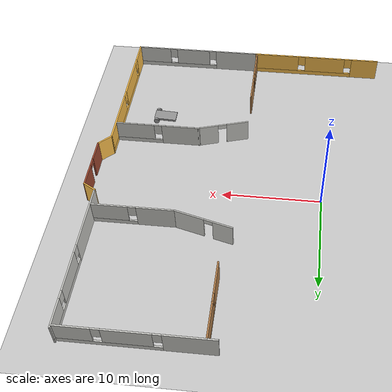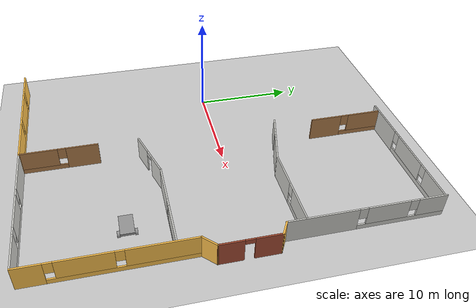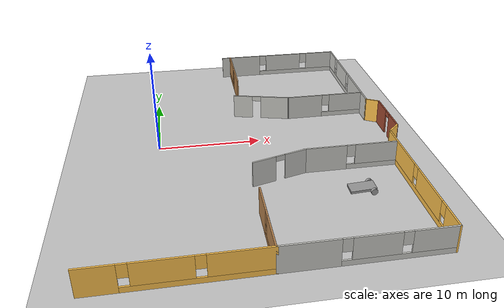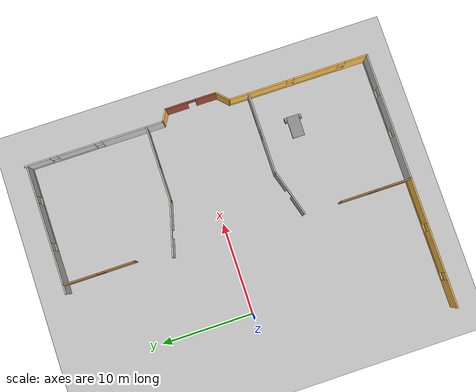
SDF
<sdf version="1.6">
 <world name="default">
  <model name="ground_plane">
   <static>1</static>
   <link name="link">
    <collision name="collision">
     <geometry><plane><normal>0 0 1</normal><size>100 100</size></plane></geometry>
     <surface><friction><ode><mu>100</mu><mu2>50</mu2></ode></friction></surface>
    </collision>
    <visual name="visual">
     <cast_shadows>0</cast_shadows>
     <geometry><plane><normal>0 0 1</normal><size>100 100</size></plane></geometry>
     <material>
      <script><uri>file://media/materials/scripts/gazebo.material</uri><name>Gazebo/Grey</name></script>
     </material>
    </visual>
   </link>
  </model>
  <model name="model">
   <pose>1.3797 -1.1711 0 0 -0 0</pose>
   <link name="Wall_24">
    <pose>-0.167493 -18.9183 0 0 -0 0</pose>
    <visual name="Wall_24_Visual_0">
     <pose>-5.61853 0 1.25 0 -0 0</pose>
     <geometry><box><size>3.01295 0.15 2.5</size></box></geometry>
     <material>
      <script><uri>file://media/materials/scripts/gazebo.material</uri><name>Gazebo/Grey</name></script>
      <ambient>1 0.764706 0.305882 1</ambient>
     </material>
     <meta><layer>0</layer></meta>
    </visual>
    <collision name="Wall_24_Collision_0">
     <geometry><box><size>3.01295 0.15 2.5</size></box></geometry>
     <pose>-5.61853 0 1.25 0 -0 0</pose>
    </collision>
    <visual name="Wall_24_Visual_1">
     <pose>1.50647 0 0.25 0 -0 0</pose>
     <geometry><box><size>11.2371 0.15 0.5</size></box></geometry>
     <material>
      <script><uri>file://media/materials/scripts/gazebo.material</uri><name>Gazebo/Grey</name></script>
      <ambient>1 0.764706 0.305882 1</ambient>
     </material>
     <meta><layer>0</layer></meta>
    </visual>
    <collision name="Wall_24_Collision_1">
     <geometry><box><size>11.2371 0.15 0.5</size></box></geometry>
     <pose>1.50647 0 0.25 0 -0 0</pose>
    </collision>
    <visual name="Wall_24_Visual_2">
     <pose>-1.02682 0 1.5 0 -0 0</pose>
     <geometry><box><size>4.57046 0.15 2</size></box></geometry>
     <material>
      <script><uri>file://media/materials/scripts/gazebo.material</uri><name>Gazebo/Grey</name></script>
      <ambient>1 0.764706 0.305882 1</ambient>
     </material>
     <meta><layer>0</layer></meta>
    </visual>
    <collision name="Wall_24_Collision_2">
     <geometry><box><size>4.57046 0.15 2</size></box></geometry>
     <pose>-1.02682 0 1.5 0 -0 0</pose>
    </collision>
    <visual name="Wall_24_Visual_3">
     <pose>4.5917 0 1.5 0 -0 0</pose>
     <geometry><box><size>5.06659 0.15 2</size></box></geometry>
     <material>
      <script><uri>file://media/materials/scripts/gazebo.material</uri><name>Gazebo/Grey</name></script>
      <ambient>1 0.764706 0.305882 1</ambient>
     </material>
     <meta><layer>0</layer></meta>
    </visual>
    <collision name="Wall_24_Collision_3">
     <geometry><box><size>5.06659 0.15 2</size></box></geometry>
     <pose>4.5917 0 1.5 0 -0 0</pose>
    </collision>
    <visual name="Wall_24_Visual_4">
     <pose>-3.71205 0 1.9 0 -0 0</pose>
     <geometry><box><size>0.8 0.15 1.2</size></box></geometry>
     <material>
      <script><uri>file://media/materials/scripts/gazebo.material</uri><name>Gazebo/Grey</name></script>
      <ambient>1 0.764706 0.305882 1</ambient>
     </material>
     <meta><layer>0</layer></meta>
    </visual>
    <collision name="Wall_24_Collision_4">
     <geometry><box><size>0.8 0.15 1.2</size></box></geometry>
     <pose>-3.71205 0 1.9 0 -0 0</pose>
    </collision>
    <visual name="Wall_24_Visual_5">
     <pose>1.65841 0 1.9 0 -0 0</pose>
     <geometry><box><size>0.8 0.15 1.2</size></box></geometry>
     <material>
      <script><uri>file://media/materials/scripts/gazebo.material</uri><name>Gazebo/Grey</name></script>
      <ambient>1 0.764706 0.305882 1</ambient>
     </material>
     <meta><layer>0</layer></meta>
    </visual>
    <collision name="Wall_24_Collision_5">
     <geometry><box><size>0.8 0.15 1.2</size></box></geometry>
     <pose>1.65841 0 1.9 0 -0 0</pose>
    </collision>
   </link>
   <link name="Wall_25">
    <pose>13.8075 -18.9183 0 0 -0 0</pose>
    <visual name="Wall_25_Visual_0">
     <pose>-4.56921 0 1.25 0 -0 0</pose>
     <geometry><box><size>4.86159 0.15 2.5</size></box></geometry>
     <material>
      <script><uri>file://media/materials/scripts/gazebo.material</uri><name>Gazebo/CeilingTiled</name></script>
      <ambient>1 0.764706 0.305882 1</ambient>
     </material>
     <meta><layer>0</layer></meta>
    </visual>
    <collision name="Wall_25_Collision_0">
     <geometry><box><size>4.86159 0.15 2.5</size></box></geometry>
     <pose>-4.56921 0 1.25 0 -0 0</pose>
    </collision>
    <visual name="Wall_25_Visual_1">
     <pose>2.43079 0 0.25 0 -0 0</pose>
     <geometry><box><size>9.13841 0.15 0.5</size></box></geometry>
     <material>
      <script><uri>file://media/materials/scripts/gazebo.material</uri><name>Gazebo/CeilingTiled</name></script>
      <ambient>1 0.764706 0.305882 1</ambient>
     </material>
     <meta><layer>0</layer></meta>
    </visual>
    <collision name="Wall_25_Collision_1">
     <geometry><box><size>9.13841 0.15 0.5</size></box></geometry>
     <pose>2.43079 0 0.25 0 -0 0</pose>
    </collision>
    <visual name="Wall_25_Visual_2">
     <pose>0.58065 0 1.5 0 -0 0</pose>
     <geometry><box><size>3.83812 0.15 2</size></box></geometry>
     <material>
      <script><uri>file://media/materials/scripts/gazebo.material</uri><name>Gazebo/CeilingTiled</name></script>
      <ambient>1 0.764706 0.305882 1</ambient>
     </material>
     <meta><layer>0</layer></meta>
    </visual>
    <collision name="Wall_25_Collision_2">
     <geometry><box><size>3.83812 0.15 2</size></box></geometry>
     <pose>0.58065 0 1.5 0 -0 0</pose>
    </collision>
    <visual name="Wall_25_Visual_3">
     <pose>5.14986 0 1.5 0 -0 0</pose>
     <geometry><box><size>3.70029 0.15 2</size></box></geometry>
     <material>
      <script><uri>file://media/materials/scripts/gazebo.material</uri><name>Gazebo/CeilingTiled</name></script>
      <ambient>1 0.764706 0.305882 1</ambient>
     </material>
     <meta><layer>0</layer></meta>
    </visual>
    <collision name="Wall_25_Collision_3">
     <geometry><box><size>3.70029 0.15 2</size></box></geometry>
     <pose>5.14986 0 1.5 0 -0 0</pose>
    </collision>
    <visual name="Wall_25_Visual_4">
     <pose>-1.73841 0 1.9 0 -0 0</pose>
     <geometry><box><size>0.8 0.15 1.2</size></box></geometry>
     <material>
      <script><uri>file://media/materials/scripts/gazebo.material</uri><name>Gazebo/CeilingTiled</name></script>
      <ambient>1 0.764706 0.305882 1</ambient>
     </material>
     <meta><layer>0</layer></meta>
    </visual>
    <collision name="Wall_25_Collision_4">
     <geometry><box><size>0.8 0.15 1.2</size></box></geometry>
     <pose>-1.73841 0 1.9 0 -0 0</pose>
    </collision>
    <visual name="Wall_25_Visual_5">
     <pose>2.89971 0 1.9 0 -0 0</pose>
     <geometry><box><size>0.8 0.15 1.2</size></box></geometry>
     <material>
      <script><uri>file://media/materials/scripts/gazebo.material</uri><name>Gazebo/CeilingTiled</name></script>
      <ambient>1 0.764706 0.305882 1</ambient>
     </material>
     <meta><layer>0</layer></meta>
    </visual>
    <collision name="Wall_25_Collision_5">
     <geometry><box><size>0.8 0.15 1.2</size></box></geometry>
     <pose>2.89971 0 1.9 0 -0 0</pose>
    </collision>
   </link>
   <link name="Wall_26">
    <pose>20.7325 -11.2433 0 0 -0 1.5708</pose>
    <visual name="Wall_26_Visual_0">
     <pose>-6.48124 0 1.25 0 -0 0</pose>
     <geometry><box><size>2.53753 0.15 2.5</size></box></geometry>
     <material>
      <script><uri>file://media/materials/scripts/gazebo.material</uri><name>Gazebo/Grey</name></script>
      <ambient>1 0.764706 0.305882 1</ambient>
     </material>
     <meta><layer>0</layer></meta>
    </visual>
    <collision name="Wall_26_Collision_0">
     <geometry><box><size>2.53753 0.15 2.5</size></box></geometry>
     <pose>-6.48124 0 1.25 0 -0 0</pose>
    </collision>
    <visual name="Wall_26_Visual_1">
     <pose>1.26876 0 0.25 0 -0 0</pose>
     <geometry><box><size>12.9625 0.15 0.5</size></box></geometry>
     <material>
      <script><uri>file://media/materials/scripts/gazebo.material</uri><name>Gazebo/Grey</name></script>
      <ambient>1 0.764706 0.305882 1</ambient>
     </material>
     <meta><layer>0</layer></meta>
    </visual>
    <collision name="Wall_26_Collision_1">
     <geometry><box><size>12.9625 0.15 0.5</size></box></geometry>
     <pose>1.26876 0 0.25 0 -0 0</pose>
    </collision>
    <visual name="Wall_26_Visual_2">
     <pose>-1.95201 0 1.5 0 -0 0</pose>
     <geometry><box><size>4.92092 0.15 2</size></box></geometry>
     <material>
      <script><uri>file://media/materials/scripts/gazebo.material</uri><name>Gazebo/Grey</name></script>
      <ambient>1 0.764706 0.305882 1</ambient>
     </material>
     <meta><layer>0</layer></meta>
    </visual>
    <collision name="Wall_26_Collision_2">
     <geometry><box><size>4.92092 0.15 2</size></box></geometry>
     <pose>-1.95201 0 1.5 0 -0 0</pose>
    </collision>
    <visual name="Wall_26_Visual_3">
     <pose>4.52922 0 1.5 0 -0 0</pose>
     <geometry><box><size>6.44155 0.15 2</size></box></geometry>
     <material>
      <script><uri>file://media/materials/scripts/gazebo.material</uri><name>Gazebo/Grey</name></script>
      <ambient>1 0.764706 0.305882 1</ambient>
     </material>
     <meta><layer>0</layer></meta>
    </visual>
    <collision name="Wall_26_Collision_3">
     <geometry><box><size>6.44155 0.15 2</size></box></geometry>
     <pose>4.52922 0 1.5 0 -0 0</pose>
    </collision>
    <visual name="Wall_26_Visual_4">
     <pose>-4.81247 0 1.9 0 -0 0</pose>
     <geometry><box><size>0.8 0.15 1.2</size></box></geometry>
     <material>
      <script><uri>file://media/materials/scripts/gazebo.material</uri><name>Gazebo/Grey</name></script>
      <ambient>1 0.764706 0.305882 1</ambient>
     </material>
     <meta><layer>0</layer></meta>
    </visual>
    <collision name="Wall_26_Collision_4">
     <geometry><box><size>0.8 0.15 1.2</size></box></geometry>
     <pose>-4.81247 0 1.9 0 -0 0</pose>
    </collision>
    <visual name="Wall_26_Visual_5">
     <pose>0.908446 0 1.9 0 -0 0</pose>
     <geometry><box><size>0.8 0.15 1.2</size></box></geometry>
     <material>
      <script><uri>file://media/materials/scripts/gazebo.material</uri><name>Gazebo/Grey</name></script>
      <ambient>1 0.764706 0.305882 1</ambient>
     </material>
     <meta><layer>0</layer></meta>
    </visual>
    <collision name="Wall_26_Collision_5">
     <geometry><box><size>0.8 0.15 1.2</size></box></geometry>
     <pose>0.908446 0 1.9 0 -0 0</pose>
    </collision>
   </link>
   <link name="Wall_27">
    <collision name="Wall_27_Collision">
     <geometry><box><size>1.75 0.15 2.5</size></box></geometry>
     <pose>0 0 1.25 0 -0 0</pose>
    </collision>
    <visual name="Wall_27_Visual">
     <pose>0 0 1.25 0 -0 0</pose>
     <geometry><box><size>1.75 0.15 2.5</size></box></geometry>
     <material>
      <script><uri>file://media/materials/scripts/gazebo.material</uri><name>Gazebo/Grey</name></script>
      <ambient>1 0.764706 0.305882 1</ambient>
     </material>
     <meta><layer>0</layer></meta>
    </visual>
    <pose>21.2982 -3.00259 0 0 -0 0.785398</pose>
   </link>
   <link name="Wall_28">
    <pose>21.8639 0.363092 0 0 -0 1.5708</pose>
    <visual name="Wall_28_Visual_0">
     <pose>-1.69424 0 1.25 0 -0 0</pose>
     <geometry><box><size>2.36151 0.15 2.5</size></box></geometry>
     <material>
      <script><uri>file://media/materials/scripts/gazebo.material</uri><name>Gazebo/Bricks</name></script>
      <ambient>1 1 1 1</ambient>
     </material>
     <meta><layer>0</layer></meta>
    </visual>
    <collision name="Wall_28_Collision_0">
     <geometry><box><size>2.36151 0.15 2.5</size></box></geometry>
     <pose>-1.69424 0 1.25 0 -0 0</pose>
    </collision>
    <visual name="Wall_28_Visual_1">
     <pose>1.63076 0 1.25 0 -0 0</pose>
     <geometry><box><size>2.48849 0.15 2.5</size></box></geometry>
     <material>
      <script><uri>file://media/materials/scripts/gazebo.material</uri><name>Gazebo/Bricks</name></script>
      <ambient>1 1 1 1</ambient>
     </material>
     <meta><layer>0</layer></meta>
    </visual>
    <collision name="Wall_28_Collision_1">
     <geometry><box><size>2.48849 0.15 2.5</size></box></geometry>
     <pose>1.63076 0 1.25 0 -0 0</pose>
    </collision>
    <visual name="Wall_28_Visual_2">
     <pose>-0.063486 0 2.25 0 -0 0</pose>
     <geometry><box><size>0.9 0.15 0.5</size></box></geometry>
     <material>
      <script><uri>file://media/materials/scripts/gazebo.material</uri><name>Gazebo/Bricks</name></script>
      <ambient>1 1 1 1</ambient>
     </material>
     <meta><layer>0</layer></meta>
    </visual>
    <collision name="Wall_28_Collision_2">
     <geometry><box><size>0.9 0.15 0.5</size></box></geometry>
     <pose>-0.063486 0 2.25 0 -0 0</pose>
    </collision>
   </link>
   <link name="Wall_29">
    <collision name="Wall_29_Collision">
     <geometry><box><size>1.5 0.15 2.5</size></box></geometry>
     <pose>0 0 1.25 0 -0 0</pose>
    </collision>
    <visual name="Wall_29_Visual">
     <pose>0 0 1.25 0 -0 0</pose>
     <geometry><box><size>1.5 0.15 2.5</size></box></geometry>
     <material>
      <script><uri>file://media/materials/scripts/gazebo.material</uri><name>Gazebo/Grey</name></script>
      <ambient>1 0.764706 0.305882 1</ambient>
     </material>
     <meta><layer>0</layer></meta>
    </visual>
    <pose>21.2793 3.50059 0 0 -0 2.61799</pose>
   </link>
   <link name="Wall_42">
    <pose>20.6947 11.3881 0 0 -0 1.5708</pose>
    <visual name="Wall_42_Visual_0">
     <pose>-4.22815 0 1.25 0 -0 0</pose>
     <geometry><box><size>6.7937 0.15 2.5</size></box></geometry>
     <material>
      <script><uri>file://media/materials/scripts/gazebo.material</uri><name>Gazebo/CeilingTiled</name></script>
      <ambient>1 0.764706 0.305882 1</ambient>
     </material>
     <meta><layer>0</layer></meta>
    </visual>
    <collision name="Wall_42_Collision_0">
     <geometry><box><size>6.7937 0.15 2.5</size></box></geometry>
     <pose>-4.22815 0 1.25 0 -0 0</pose>
    </collision>
    <visual name="Wall_42_Visual_1">
     <pose>3.39685 0 0.25 0 -0 0</pose>
     <geometry><box><size>8.4563 0.15 0.5</size></box></geometry>
     <material>
      <script><uri>file://media/materials/scripts/gazebo.material</uri><name>Gazebo/CeilingTiled</name></script>
      <ambient>1 0.764706 0.305882 1</ambient>
     </material>
     <meta><layer>0</layer></meta>
    </visual>
    <collision name="Wall_42_Collision_1">
     <geometry><box><size>8.4563 0.15 0.5</size></box></geometry>
     <pose>3.39685 0 0.25 0 -0 0</pose>
    </collision>
    <visual name="Wall_42_Visual_2">
     <pose>2.00082 0 1.5 0 -0 0</pose>
     <geometry><box><size>4.06425 0.15 2</size></box></geometry>
     <material>
      <script><uri>file://media/materials/scripts/gazebo.material</uri><name>Gazebo/CeilingTiled</name></script>
      <ambient>1 0.764706 0.305882 1</ambient>
     </material>
     <meta><layer>0</layer></meta>
    </visual>
    <collision name="Wall_42_Collision_2">
     <geometry><box><size>4.06425 0.15 2</size></box></geometry>
     <pose>2.00082 0 1.5 0 -0 0</pose>
    </collision>
    <visual name="Wall_42_Visual_3">
     <pose>6.22897 0 1.5 0 -0 0</pose>
     <geometry><box><size>2.79205 0.15 2</size></box></geometry>
     <material>
      <script><uri>file://media/materials/scripts/gazebo.material</uri><name>Gazebo/CeilingTiled</name></script>
      <ambient>1 0.764706 0.305882 1</ambient>
     </material>
     <meta><layer>0</layer></meta>
    </visual>
    <collision name="Wall_42_Collision_3">
     <geometry><box><size>2.79205 0.15 2</size></box></geometry>
     <pose>6.22897 0 1.5 0 -0 0</pose>
    </collision>
    <visual name="Wall_42_Visual_4">
     <pose>-0.431303 0 1.9 0 -0 0</pose>
     <geometry><box><size>0.8 0.15 1.2</size></box></geometry>
     <material>
      <script><uri>file://media/materials/scripts/gazebo.material</uri><name>Gazebo/CeilingTiled</name></script>
      <ambient>1 0.764706 0.305882 1</ambient>
     </material>
     <meta><layer>0</layer></meta>
    </visual>
    <collision name="Wall_42_Collision_4">
     <geometry><box><size>0.8 0.15 1.2</size></box></geometry>
     <pose>-0.431303 0 1.9 0 -0 0</pose>
    </collision>
    <visual name="Wall_42_Visual_5">
     <pose>4.43295 0 1.9 0 -0 0</pose>
     <geometry><box><size>0.8 0.15 1.2</size></box></geometry>
     <material>
      <script><uri>file://media/materials/scripts/gazebo.material</uri><name>Gazebo/CeilingTiled</name></script>
      <ambient>1 0.764706 0.305882 1</ambient>
     </material>
     <meta><layer>0</layer></meta>
    </visual>
    <collision name="Wall_42_Collision_5">
     <geometry><box><size>0.8 0.15 1.2</size></box></geometry>
     <pose>4.43295 0 1.9 0 -0 0</pose>
    </collision>
   </link>
   <link name="Wall_53">
    <pose>13.6825 18.7535 0 0 -0 0</pose>
    <visual name="Wall_53_Visual_0">
     <pose>-4.64128 0 1.25 0 -0 0</pose>
     <geometry><box><size>4.71744 0.15 2.5</size></box></geometry>
     <material>
      <script><uri>file://media/materials/scripts/gazebo.material</uri><name>Gazebo/CeilingTiled</name></script>
      <ambient>1 0.764706 0.305882 1</ambient>
     </material>
     <meta><layer>0</layer></meta>
    </visual>
    <collision name="Wall_53_Collision_0">
     <geometry><box><size>4.71744 0.15 2.5</size></box></geometry>
     <pose>-4.64128 0 1.25 0 -0 0</pose>
    </collision>
    <visual name="Wall_53_Visual_1">
     <pose>2.35872 0 0.25 0 -0 0</pose>
     <geometry><box><size>9.28256 0.15 0.5</size></box></geometry>
     <material>
      <script><uri>file://media/materials/scripts/gazebo.material</uri><name>Gazebo/CeilingTiled</name></script>
      <ambient>1 0.764706 0.305882 1</ambient>
     </material>
     <meta><layer>0</layer></meta>
    </visual>
    <collision name="Wall_53_Collision_1">
     <geometry><box><size>9.28256 0.15 0.5</size></box></geometry>
     <pose>2.35872 0 0.25 0 -0 0</pose>
    </collision>
    <visual name="Wall_53_Visual_2">
     <pose>0.700074 0 1.5 0 -0 0</pose>
     <geometry><box><size>4.36526 0.15 2</size></box></geometry>
     <material>
      <script><uri>file://media/materials/scripts/gazebo.material</uri><name>Gazebo/CeilingTiled</name></script>
      <ambient>1 0.764706 0.305882 1</ambient>
     </material>
     <meta><layer>0</layer></meta>
    </visual>
    <collision name="Wall_53_Collision_2">
     <geometry><box><size>4.36526 0.15 2</size></box></geometry>
     <pose>0.700074 0 1.5 0 -0 0</pose>
    </collision>
    <visual name="Wall_53_Visual_3">
     <pose>5.34135 0 1.5 0 -0 0</pose>
     <geometry><box><size>3.31729 0.15 2</size></box></geometry>
     <material>
      <script><uri>file://media/materials/scripts/gazebo.material</uri><name>Gazebo/CeilingTiled</name></script>
      <ambient>1 0.764706 0.305882 1</ambient>
     </material>
     <meta><layer>0</layer></meta>
    </visual>
    <collision name="Wall_53_Collision_3">
     <geometry><box><size>3.31729 0.15 2</size></box></geometry>
     <pose>5.34135 0 1.5 0 -0 0</pose>
    </collision>
    <visual name="Wall_53_Visual_4">
     <pose>-1.88256 0 1.9 0 -0 0</pose>
     <geometry><box><size>0.8 0.15 1.2</size></box></geometry>
     <material>
      <script><uri>file://media/materials/scripts/gazebo.material</uri><name>Gazebo/CeilingTiled</name></script>
      <ambient>1 0.764706 0.305882 1</ambient>
     </material>
     <meta><layer>0</layer></meta>
    </visual>
    <collision name="Wall_53_Collision_4">
     <geometry><box><size>0.8 0.15 1.2</size></box></geometry>
     <pose>-1.88256 0 1.9 0 -0 0</pose>
    </collision>
    <visual name="Wall_53_Visual_5">
     <pose>3.28271 0 1.9 0 -0 0</pose>
     <geometry><box><size>0.8 0.15 1.2</size></box></geometry>
     <material>
      <script><uri>file://media/materials/scripts/gazebo.material</uri><name>Gazebo/CeilingTiled</name></script>
      <ambient>1 0.764706 0.305882 1</ambient>
     </material>
     <meta><layer>0</layer></meta>
    </visual>
    <collision name="Wall_53_Collision_5">
     <geometry><box><size>0.8 0.15 1.2</size></box></geometry>
     <pose>3.28271 0 1.9 0 -0 0</pose>
    </collision>
   </link>
   <link name="Wall_58">
    <pose>9.69751 6.42988 0 0 0 -0.261799</pose>
    <visual name="Wall_58_Visual_0">
     <pose>-1.98198 0 1.25 0 -0 0</pose>
     <geometry><box><size>2.03605 0.15 2.5</size></box></geometry>
     <material>
      <script><uri>file://media/materials/scripts/gazebo.material</uri><name>Gazebo/CeilingTiled</name></script>
      <ambient>0.333333 0.666667 1 1</ambient>
     </material>
     <meta><layer>0</layer></meta>
    </visual>
    <collision name="Wall_58_Collision_0">
     <geometry><box><size>2.03605 0.15 2.5</size></box></geometry>
     <pose>-1.98198 0 1.25 0 -0 0</pose>
    </collision>
    <visual name="Wall_58_Visual_1">
     <pose>1.46802 0 1.25 0 -0 0</pose>
     <geometry><box><size>3.06395 0.15 2.5</size></box></geometry>
     <material>
      <script><uri>file://media/materials/scripts/gazebo.material</uri><name>Gazebo/CeilingTiled</name></script>
      <ambient>0.333333 0.666667 1 1</ambient>
     </material>
     <meta><layer>0</layer></meta>
    </visual>
    <collision name="Wall_58_Collision_1">
     <geometry><box><size>3.06395 0.15 2.5</size></box></geometry>
     <pose>1.46802 0 1.25 0 -0 0</pose>
    </collision>
    <visual name="Wall_58_Visual_2">
     <pose>-0.513955 0 2.25 0 -0 0</pose>
     <geometry><box><size>0.9 0.15 0.5</size></box></geometry>
     <material>
      <script><uri>file://media/materials/scripts/gazebo.material</uri><name>Gazebo/CeilingTiled</name></script>
      <ambient>0.333333 0.666667 1 1</ambient>
     </material>
     <meta><layer>0</layer></meta>
    </visual>
    <collision name="Wall_58_Collision_2">
     <geometry><box><size>0.9 0.15 0.5</size></box></geometry>
     <pose>-0.513955 0 2.25 0 -0 0</pose>
    </collision>
   </link>
   <link name="Wall_59">
    <pose>16.5728 5.67284 0 0 -0 0</pose>
    <visual name="Wall_59_Visual_0">
     <pose>-2.21976 0 1.25 0 -0 0</pose>
     <geometry><box><size>3.81048 0.15 2.5</size></box></geometry>
     <material>
      <script><uri>file://media/materials/scripts/gazebo.material</uri><name>Gazebo/CeilingTiled</name></script>
      <ambient>0.333333 0.666667 1 1</ambient>
     </material>
     <meta><layer>0</layer></meta>
    </visual>
    <collision name="Wall_59_Collision_0">
     <geometry><box><size>3.81048 0.15 2.5</size></box></geometry>
     <pose>-2.21976 0 1.25 0 -0 0</pose>
    </collision>
    <visual name="Wall_59_Visual_1">
     <pose>1.90524 0 0.25 0 -0 0</pose>
     <geometry><box><size>4.43952 0.15 0.5</size></box></geometry>
     <material>
      <script><uri>file://media/materials/scripts/gazebo.material</uri><name>Gazebo/CeilingTiled</name></script>
      <ambient>0.333333 0.666667 1 1</ambient>
     </material>
     <meta><layer>0</layer></meta>
    </visual>
    <collision name="Wall_59_Collision_1">
     <geometry><box><size>4.43952 0.15 0.5</size></box></geometry>
     <pose>1.90524 0 0.25 0 -0 0</pose>
    </collision>
    <visual name="Wall_59_Visual_2">
     <pose>2.30524 0 1.5 0 -0 0</pose>
     <geometry><box><size>3.63952 0.15 2</size></box></geometry>
     <material>
      <script><uri>file://media/materials/scripts/gazebo.material</uri><name>Gazebo/CeilingTiled</name></script>
      <ambient>0.333333 0.666667 1 1</ambient>
     </material>
     <meta><layer>0</layer></meta>
    </visual>
    <collision name="Wall_59_Collision_2">
     <geometry><box><size>3.63952 0.15 2</size></box></geometry>
     <pose>2.30524 0 1.5 0 -0 0</pose>
    </collision>
    <visual name="Wall_59_Visual_3">
     <pose>0.085482 0 1.9 0 -0 0</pose>
     <geometry><box><size>0.8 0.15 1.2</size></box></geometry>
     <material>
      <script><uri>file://media/materials/scripts/gazebo.material</uri><name>Gazebo/CeilingTiled</name></script>
      <ambient>0.333333 0.666667 1 1</ambient>
     </material>
     <meta><layer>0</layer></meta>
    </visual>
    <collision name="Wall_59_Collision_3">
     <geometry><box><size>0.8 0.15 1.2</size></box></geometry>
     <pose>0.085482 0 1.9 0 -0 0</pose>
    </collision>
   </link>
   <link name="Wall_64">
    <pose>9.36596 -6.44203 0 0 -0 0.290428</pose>
    <visual name="Wall_64_Visual_0">
     <pose>-1.54388 0 1.25 0 -0 0</pose>
     <geometry><box><size>2.32739 0.15 2.5</size></box></geometry>
     <material>
      <script><uri>file://media/materials/scripts/gazebo.material</uri><name>Gazebo/CeilingTiled</name></script>
      <ambient>0.333333 0.666667 1 1</ambient>
     </material>
     <meta><layer>0</layer></meta>
    </visual>
    <collision name="Wall_64_Collision_0">
     <geometry><box><size>2.32739 0.15 2.5</size></box></geometry>
     <pose>-1.54388 0 1.25 0 -0 0</pose>
    </collision>
    <visual name="Wall_64_Visual_1">
     <pose>1.6137 0 1.25 0 -0 0</pose>
     <geometry><box><size>2.18776 0.15 2.5</size></box></geometry>
     <material>
      <script><uri>file://media/materials/scripts/gazebo.material</uri><name>Gazebo/CeilingTiled</name></script>
      <ambient>0.333333 0.666667 1 1</ambient>
     </material>
     <meta><layer>0</layer></meta>
    </visual>
    <collision name="Wall_64_Collision_1">
     <geometry><box><size>2.18776 0.15 2.5</size></box></geometry>
     <pose>1.6137 0 1.25 0 -0 0</pose>
    </collision>
    <visual name="Wall_64_Visual_2">
     <pose>0.069817 0 2.25 0 -0 0</pose>
     <geometry><box><size>0.9 0.15 0.5</size></box></geometry>
     <material>
      <script><uri>file://media/materials/scripts/gazebo.material</uri><name>Gazebo/CeilingTiled</name></script>
      <ambient>0.333333 0.666667 1 1</ambient>
     </material>
     <meta><layer>0</layer></meta>
    </visual>
    <collision name="Wall_64_Collision_2">
     <geometry><box><size>0.9 0.15 0.5</size></box></geometry>
     <pose>0.069817 0 2.25 0 -0 0</pose>
    </collision>
   </link>
   <link name="Wall_69">
    <pose>16.2555 -5.67484 0 0 -0 0</pose>
    <visual name="Wall_69_Visual_0">
     <pose>-2.4638 0 1.25 0 -0 0</pose>
     <geometry><box><size>4.07241 0.15 2.5</size></box></geometry>
     <material>
      <script><uri>file://media/materials/scripts/gazebo.material</uri><name>Gazebo/CeilingTiled</name></script>
      <ambient>0.333333 0.666667 1 1</ambient>
     </material>
     <meta><layer>0</layer></meta>
    </visual>
    <collision name="Wall_69_Collision_0">
     <geometry><box><size>4.07241 0.15 2.5</size></box></geometry>
     <pose>-2.4638 0 1.25 0 -0 0</pose>
    </collision>
    <visual name="Wall_69_Visual_1">
     <pose>2.0362 0 0.25 0 -0 0</pose>
     <geometry><box><size>4.92759 0.15 0.5</size></box></geometry>
     <material>
      <script><uri>file://media/materials/scripts/gazebo.material</uri><name>Gazebo/CeilingTiled</name></script>
      <ambient>0.333333 0.666667 1 1</ambient>
     </material>
     <meta><layer>0</layer></meta>
    </visual>
    <collision name="Wall_69_Collision_1">
     <geometry><box><size>4.92759 0.15 0.5</size></box></geometry>
     <pose>2.0362 0 0.25 0 -0 0</pose>
    </collision>
    <visual name="Wall_69_Visual_2">
     <pose>2.43621 0 1.5 0 -0 0</pose>
     <geometry><box><size>4.12759 0.15 2</size></box></geometry>
     <material>
      <script><uri>file://media/materials/scripts/gazebo.material</uri><name>Gazebo/CeilingTiled</name></script>
      <ambient>0.333333 0.666667 1 1</ambient>
     </material>
     <meta><layer>0</layer></meta>
    </visual>
    <collision name="Wall_69_Collision_2">
     <geometry><box><size>4.12759 0.15 2</size></box></geometry>
     <pose>2.43621 0 1.5 0 -0 0</pose>
    </collision>
    <visual name="Wall_69_Visual_3">
     <pose>-0.02759 0 1.9 0 -0 0</pose>
     <geometry><box><size>0.8 0.15 1.2</size></box></geometry>
     <material>
      <script><uri>file://media/materials/scripts/gazebo.material</uri><name>Gazebo/CeilingTiled</name></script>
      <ambient>0.333333 0.666667 1 1</ambient>
     </material>
     <meta><layer>0</layer></meta>
    </visual>
    <collision name="Wall_69_Collision_3">
     <geometry><box><size>0.8 0.15 1.2</size></box></geometry>
     <pose>-0.02759 0 1.9 0 -0 0</pose>
    </collision>
   </link>
   <link name="Wall_75">
    <pose>6.8064 -15.1004 0 0 0 -1.5708</pose>
    <visual name="Wall_75_Visual_0">
     <pose>-2.27008 0 1.25 0 -0 0</pose>
     <geometry><box><size>3.20983 0.15 2.5</size></box></geometry>
     <material>
      <script><uri>file://media/materials/scripts/gazebo.material</uri><name>Gazebo/Wood</name></script>
      <ambient>0.333333 0.666667 1 1</ambient>
     </material>
     <meta><layer>0</layer></meta>
    </visual>
    <collision name="Wall_75_Collision_0">
     <geometry><box><size>3.20983 0.15 2.5</size></box></geometry>
     <pose>-2.27008 0 1.25 0 -0 0</pose>
    </collision>
    <visual name="Wall_75_Visual_1">
     <pose>1.60492 0 0.25 0 -0 0</pose>
     <geometry><box><size>4.54017 0.15 0.5</size></box></geometry>
     <material>
      <script><uri>file://media/materials/scripts/gazebo.material</uri><name>Gazebo/Wood</name></script>
      <ambient>0.333333 0.666667 1 1</ambient>
     </material>
     <meta><layer>0</layer></meta>
    </visual>
    <collision name="Wall_75_Collision_1">
     <geometry><box><size>4.54017 0.15 0.5</size></box></geometry>
     <pose>1.60492 0 0.25 0 -0 0</pose>
    </collision>
    <visual name="Wall_75_Visual_2">
     <pose>2.00492 0 1.5 0 -0 0</pose>
     <geometry><box><size>3.74017 0.15 2</size></box></geometry>
     <material>
      <script><uri>file://media/materials/scripts/gazebo.material</uri><name>Gazebo/Wood</name></script>
      <ambient>0.333333 0.666667 1 1</ambient>
     </material>
     <meta><layer>0</layer></meta>
    </visual>
    <collision name="Wall_75_Collision_2">
     <geometry><box><size>3.74017 0.15 2</size></box></geometry>
     <pose>2.00492 0 1.5 0 -0 0</pose>
    </collision>
    <visual name="Wall_75_Visual_3">
     <pose>-0.26517 0 1.9 0 -0 0</pose>
     <geometry><box><size>0.8 0.15 1.2</size></box></geometry>
     <material>
      <script><uri>file://media/materials/scripts/gazebo.material</uri><name>Gazebo/Wood</name></script>
      <ambient>0.333333 0.666667 1 1</ambient>
     </material>
     <meta><layer>0</layer></meta>
    </visual>
    <collision name="Wall_75_Collision_3">
     <geometry><box><size>0.8 0.15 1.2</size></box></geometry>
     <pose>-0.26517 0 1.9 0 -0 0</pose>
    </collision>
   </link>
   <link name="Wall_82">
    <pose>7.67952 14.9439 0 0 -0 1.5708</pose>
    <visual name="Wall_82_Visual_0">
     <pose>-2.22962 0 1.25 0 -0 0</pose>
     <geometry><box><size>3.29077 0.15 2.5</size></box></geometry>
     <material>
      <script><uri>file://media/materials/scripts/gazebo.material</uri><name>Gazebo/Wood</name></script>
      <ambient>0.333333 0.666667 1 1</ambient>
     </material>
     <meta><layer>0</layer></meta>
    </visual>
    <collision name="Wall_82_Collision_0">
     <geometry><box><size>3.29077 0.15 2.5</size></box></geometry>
     <pose>-2.22962 0 1.25 0 -0 0</pose>
    </collision>
    <visual name="Wall_82_Visual_1">
     <pose>1.64538 0 0.25 0 -0 0</pose>
     <geometry><box><size>4.45923 0.15 0.5</size></box></geometry>
     <material>
      <script><uri>file://media/materials/scripts/gazebo.material</uri><name>Gazebo/Wood</name></script>
      <ambient>0.333333 0.666667 1 1</ambient>
     </material>
     <meta><layer>0</layer></meta>
    </visual>
    <collision name="Wall_82_Collision_1">
     <geometry><box><size>4.45923 0.15 0.5</size></box></geometry>
     <pose>1.64538 0 0.25 0 -0 0</pose>
    </collision>
    <visual name="Wall_82_Visual_2">
     <pose>2.04538 0 1.5 0 -0 0</pose>
     <geometry><box><size>3.65923 0.15 2</size></box></geometry>
     <material>
      <script><uri>file://media/materials/scripts/gazebo.material</uri><name>Gazebo/Wood</name></script>
      <ambient>0.333333 0.666667 1 1</ambient>
     </material>
     <meta><layer>0</layer></meta>
    </visual>
    <collision name="Wall_82_Collision_2">
     <geometry><box><size>3.65923 0.15 2</size></box></geometry>
     <pose>2.04538 0 1.5 0 -0 0</pose>
    </collision>
    <visual name="Wall_82_Visual_3">
     <pose>-0.184233 0 1.9 0 -0 0</pose>
     <geometry><box><size>0.8 0.15 1.2</size></box></geometry>
     <material>
      <script><uri>file://media/materials/scripts/gazebo.material</uri><name>Gazebo/Wood</name></script>
      <ambient>0.333333 0.666667 1 1</ambient>
     </material>
     <meta><layer>0</layer></meta>
    </visual>
    <collision name="Wall_82_Collision_3">
     <geometry><box><size>0.8 0.15 1.2</size></box></geometry>
     <pose>-0.184233 0 1.9 0 -0 0</pose>
    </collision>
   </link>
   <static>1</static>
  </model>
  <model name="model_1">
   <link name="link_0">
    <pose>-0.19595 -0.00375 0.075 0 -0 0</pose>
    <inertial>
     <mass>0.704211</mass>
     <inertia>
      <ixx>0.105994</ixx>
      <ixy>0</ixy>
      <ixz>0</ixz>
      <iyy>0.331912</iyy>
      <iyz>0</iyz>
      <izz>0.431992</izz>
     </inertia>
    </inertial>
    <visual name="visual">
     <geometry><box><size>2.36759 1.32504 0.224451</size></box></geometry>
     <material>
      <lighting>1</lighting>
      <script><uri>file://media/materials/scripts/gazebo.material</uri><name>Gazebo/Grey</name></script>
      <ambient>0.3 0.3 0.3 1</ambient>
      <diffuse>0.7 0.7 0.7 1</diffuse>
      <specular>0.01 0.01 0.01 1</specular>
      <emissive>0 0 0 1</emissive>
      <shader type="vertex"><normal_map>__default__</normal_map></shader>
     </material>
    </visual>
    <collision name="collision">
     <geometry><box><size>2.36759 1.32504 0.224451</size></box></geometry>
     <surface>
      <friction>
       <ode><mu>1</mu><mu2>1</mu2><fdir1>0 0 0</fdir1><slip1>0</slip1><slip2>0</slip2></ode>
       <torsional>
        <coefficient>1</coefficient>
        <patch_radius>0</patch_radius>
        <surface_radius>0</surface_radius>
        <use_patch_radius>1</use_patch_radius>
        <ode><slip>0</slip></ode>
       </torsional>
      </friction>
      <bounce><restitution_coefficient>0</restitution_coefficient><threshold>1e+06</threshold></bounce>
      <contact>
       <collide_without_contact>0</collide_without_contact>
       <collide_without_contact_bitmask>1</collide_without_contact_bitmask>
       <collide_bitmask>1</collide_bitmask>
       <ode>
        <soft_cfm>0</soft_cfm>
        <soft_erp>0.2</soft_erp>
        <kp>1e+13</kp>
        <kd>1</kd>
        <max_vel>0.01</max_vel>
        <min_depth>0</min_depth>
       </ode>
       <bullet>
        <split_impulse>1</split_impulse>
        <split_impulse_penetration_threshold>-0.01</split_impulse_penetration_threshold>
        <soft_cfm>0</soft_cfm>
        <soft_erp>0.2</soft_erp>
        <kp>1e+13</kp>
        <kd>1</kd>
       </bullet>
      </contact>
     </surface>
    </collision>
   </link>
   <link name="link_1">
    <pose>0.687847 0.7988 -0.025 1.5707 -0 0</pose>
    <inertial>
     <mass>1</mass>
     <inertia><ixx>0.145833</ixx><ixy>0</ixy><ixz>0</ixz><iyy>0.145833</iyy><iyz>0</iyz><izz>0.125</izz></inertia>
    </inertial>
    <visual name="visual">
     <geometry><cylinder><radius>0.3</radius><length>0.25</length></cylinder></geometry>
     <material>
      <lighting>1</lighting>
      <script><uri>file://media/materials/scripts/gazebo.material</uri><name>Gazebo/Grey</name></script>
      <ambient>0.3 0.3 0.3 1</ambient>
      <diffuse>0.7 0.7 0.7 1</diffuse>
      <specular>0.01 0.01 0.01 1</specular>
      <emissive>0 0 0 1</emissive>
      <shader type="vertex"><normal_map>__default__</normal_map></shader>
     </material>
    </visual>
    <collision name="collision">
     <geometry><cylinder><radius>0.3</radius><length>0.25</length></cylinder></geometry>
     <surface>
      <friction>
       <ode><mu>1</mu><mu2>1</mu2><fdir1>0 0 0</fdir1><slip1>0</slip1><slip2>0</slip2></ode>
       <torsional>
        <coefficient>1</coefficient>
        <patch_radius>0</patch_radius>
        <surface_radius>0</surface_radius>
        <use_patch_radius>1</use_patch_radius>
        <ode><slip>0</slip></ode>
       </torsional>
      </friction>
      <bounce><restitution_coefficient>0</restitution_coefficient><threshold>1e+06</threshold></bounce>
      <contact>
       <collide_without_contact>0</collide_without_contact>
       <collide_without_contact_bitmask>1</collide_without_contact_bitmask>
       <collide_bitmask>1</collide_bitmask>
       <ode>
        <soft_cfm>0</soft_cfm>
        <soft_erp>0.2</soft_erp>
        <kp>1e+13</kp>
        <kd>1</kd>
        <max_vel>0.01</max_vel>
        <min_depth>0</min_depth>
       </ode>
       <bullet>
        <split_impulse>1</split_impulse>
        <split_impulse_penetration_threshold>-0.01</split_impulse_penetration_threshold>
        <soft_cfm>0</soft_cfm>
        <soft_erp>0.2</soft_erp>
        <kp>1e+13</kp>
        <kd>1</kd>
       </bullet>
      </contact>
     </surface>
    </collision>
   </link>
   <link name="link_1_clone">
    <pose>0.687847 -0.7913 -0.025 1.5707 -0 0</pose>
    <inertial>
     <mass>1</mass>
     <inertia><ixx>0.145833</ixx><ixy>0</ixy><ixz>0</ixz><iyy>0.145833</iyy><iyz>0</iyz><izz>0.125</izz></inertia>
    </inertial>
    <visual name="visual">
     <geometry><cylinder><radius>0.3</radius><length>0.25</length></cylinder></geometry>
     <material>
      <lighting>1</lighting>
      <script><uri>file://media/materials/scripts/gazebo.material</uri><name>Gazebo/Grey</name></script>
      <ambient>0.3 0.3 0.3 1</ambient>
      <diffuse>0.7 0.7 0.7 1</diffuse>
      <specular>0.01 0.01 0.01 1</specular>
      <emissive>0 0 0 1</emissive>
      <shader type="vertex"><normal_map>__default__</normal_map></shader>
     </material>
    </visual>
    <collision name="collision">
     <geometry><cylinder><radius>0.3</radius><length>0.25</length></cylinder></geometry>
     <surface>
      <friction>
       <ode><mu>1</mu><mu2>1</mu2><fdir1>0 0 0</fdir1><slip1>0</slip1><slip2>0</slip2></ode>
       <torsional>
        <coefficient>1</coefficient>
        <patch_radius>0</patch_radius>
        <surface_radius>0</surface_radius>
        <use_patch_radius>1</use_patch_radius>
        <ode><slip>0</slip></ode>
       </torsional>
      </friction>
      <bounce><restitution_coefficient>0</restitution_coefficient><threshold>1e+06</threshold></bounce>
      <contact>
       <collide_without_contact>0</collide_without_contact>
       <collide_without_contact_bitmask>1</collide_without_contact_bitmask>
       <collide_bitmask>1</collide_bitmask>
       <ode>
        <soft_cfm>0</soft_cfm>
        <soft_erp>0.2</soft_erp>
        <kp>1e+13</kp>
        <kd>1</kd>
        <max_vel>0.01</max_vel>
        <min_depth>0</min_depth>
       </ode>
       <bullet>
        <split_impulse>1</split_impulse>
        <split_impulse_penetration_threshold>-0.01</split_impulse_penetration_threshold>
        <soft_cfm>0</soft_cfm>
        <soft_erp>0.2</soft_erp>
        <kp>1e+13</kp>
        <kd>1</kd>
       </bullet>
      </contact>
     </surface>
    </collision>
   </link>
   <link name="link_2">
    <pose>-1.17975 -0.00375 -0.025 0 -0 0</pose>
    <inertial>
     <mass>1</mass>
     <inertia><ixx>0.1</ixx><ixy>0</ixy><ixz>0</ixz><iyy>0.1</iyy><iyz>0</iyz><izz>0.1</izz></inertia>
    </inertial>
    <visual name="visual">
     <geometry><sphere><radius>0.2</radius></sphere></geometry>
     <material>
      <lighting>1</lighting>
      <script><uri>file://media/materials/scripts/gazebo.material</uri><name>Gazebo/Grey</name></script>
      <ambient>0.3 0.3 0.3 1</ambient>
      <diffuse>0.7 0.7 0.7 1</diffuse>
      <specular>0.01 0.01 0.01 1</specular>
      <emissive>0 0 0 1</emissive>
      <shader type="vertex"><normal_map>__default__</normal_map></shader>
     </material>
    </visual>
    <collision name="collision">
     <geometry><sphere><radius>0.2</radius></sphere></geometry>
     <surface>
      <friction>
       <ode><mu>1</mu><mu2>1</mu2><fdir1>0 0 0</fdir1><slip1>0</slip1><slip2>0</slip2></ode>
       <torsional>
        <coefficient>1</coefficient>
        <patch_radius>0</patch_radius>
        <surface_radius>0</surface_radius>
        <use_patch_radius>1</use_patch_radius>
        <ode><slip>0</slip></ode>
       </torsional>
      </friction>
      <bounce><restitution_coefficient>0</restitution_coefficient><threshold>1e+06</threshold></bounce>
      <contact>
       <collide_without_contact>0</collide_without_contact>
       <collide_without_contact_bitmask>1</collide_without_contact_bitmask>
       <collide_bitmask>1</collide_bitmask>
       <ode>
        <soft_cfm>0</soft_cfm>
        <soft_erp>0.2</soft_erp>
        <kp>1e+13</kp>
        <kd>1</kd>
        <max_vel>0.01</max_vel>
        <min_depth>0</min_depth>
       </ode>
       <bullet>
        <split_impulse>1</split_impulse>
        <split_impulse_penetration_threshold>-0.01</split_impulse_penetration_threshold>
        <soft_cfm>0</soft_cfm>
        <soft_erp>0.2</soft_erp>
        <kp>1e+13</kp>
        <kd>1</kd>
       </bullet>
      </contact>
     </surface>
    </collision>
   </link>
   <joint name="link_0_JOINT_5" type="revolute">
    <parent>link_0</parent>
    <child>link_1</child>
    <axis>
     <xyz>0 0 1</xyz>
     <use_parent_model_frame>0</use_parent_model_frame>
     <limit>
      <lower>-1.79769e+308</lower>
      <upper>1.79769e+308</upper>
      <effort>-1</effort>
      <velocity>-1</velocity>
     </limit>
     <dynamics>
      <spring_reference>0</spring_reference>
      <spring_stiffness>0</spring_stiffness>
      <damping>0</damping>
     </dynamics>
    </axis>
    <physics>
     <ode><limit><cfm>0</cfm><erp>0.2</erp></limit><suspension><cfm>0</cfm><erp>0.2</erp></suspension></ode>
    </physics>
   </joint>
   <joint name="link_0_JOINT_6" type="revolute">
    <parent>link_0</parent>
    <child>link_1_clone</child>
    <axis>
     <xyz>0 0 1</xyz>
     <use_parent_model_frame>0</use_parent_model_frame>
     <limit>
      <lower>-1.79769e+308</lower>
      <upper>1.79769e+308</upper>
      <effort>-1</effort>
      <velocity>-1</velocity>
     </limit>
     <dynamics>
      <spring_reference>0</spring_reference>
      <spring_stiffness>0</spring_stiffness>
      <damping>0</damping>
     </dynamics>
    </axis>
    <physics>
     <ode><limit><cfm>0</cfm><erp>0.2</erp></limit><suspension><cfm>0</cfm><erp>0.2</erp></suspension></ode>
    </physics>
   </joint>
   <joint name="link_0_JOINT_7" type="ball">
    <parent>link_0</parent>
    <child>link_2</child>
    <physics>
     <ode><limit><cfm>0</cfm><erp>0.2</erp></limit><suspension><cfm>0</cfm><erp>0.2</erp></suspension></ode>
    </physics>
   </joint>
   <static>0</static>
   <pose>17.7712 -10.6971 0.288141 0 -0.053577 0.001544</pose>
  </model>
 </world>
</sdf>
